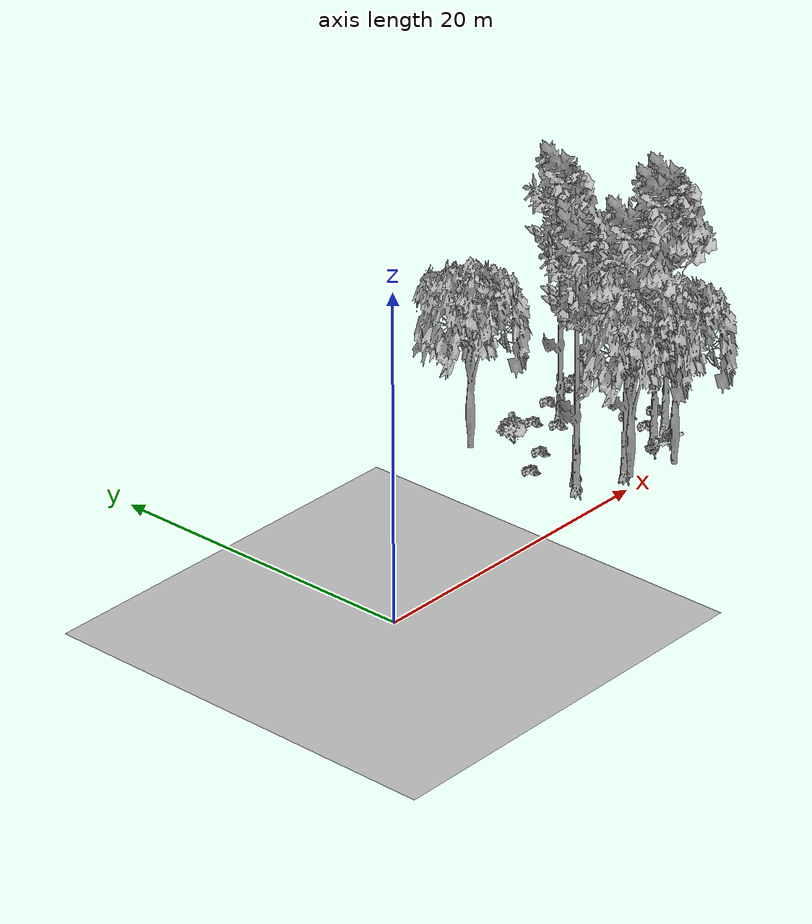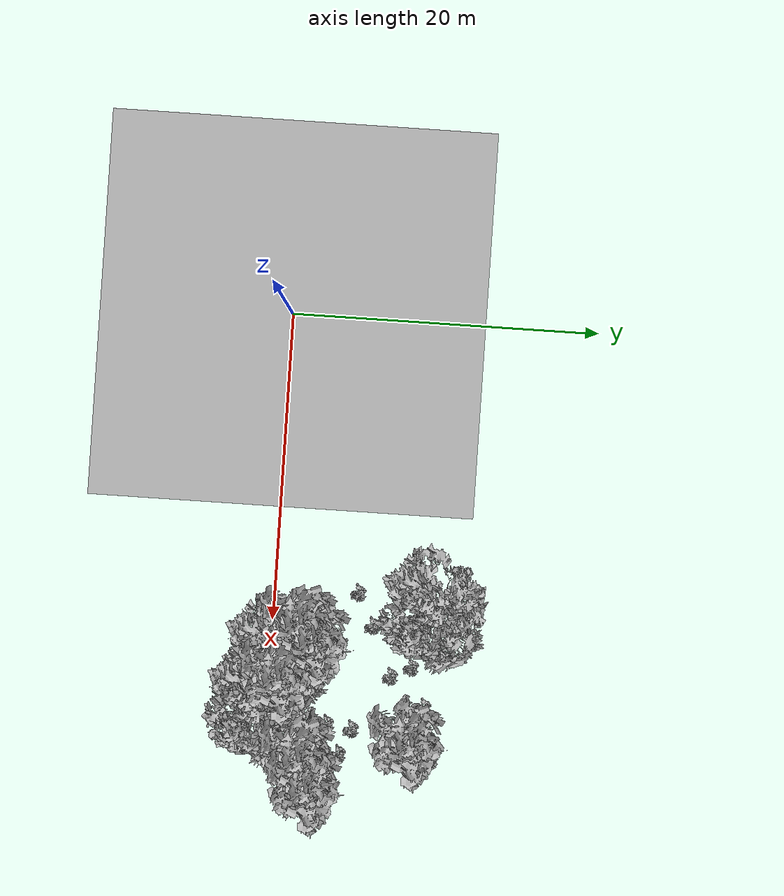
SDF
<sdf version="1.7">
 <world name="default">
  <model name="ground_plane">
   <static>1</static>
   <link name="link">
    <collision name="collision">
     <pose>-50 0 0 0 -0 0</pose>
     <geometry><plane><normal>0 0 1</normal><size>80 80</size></plane></geometry>
     <surface><contact><ode><min_depth>0.01</min_depth><max_vel>0</max_vel></ode></contact></surface>
    </collision>
    <visual name="grass">
     <cast_shadows>0</cast_shadows>
     <geometry>
      <mesh>
       <scale>0.46714285714285714 0.46714285714285714 0.1</scale>
       <uri>file://grass_plane/meshes/grass_plane.dae</uri>
      </mesh>
     </geometry>
    </visual>
   </link>
  </model>
  <model name="Tree 30">
   <static>1</static>
   <pose>21.31681991078463 0.924486611022445 0 1.57079 -0 0</pose>
   <link name="link">
    <collision name="collision">
     <geometry><mesh><scale>3.5 5 3.5</scale><uri>model://tree_2/meshes/tree_2.obj</uri></mesh></geometry>
    </collision>
    <visual name="visual">
     <geometry><mesh><scale>3.5 5 3.5</scale><uri>model://tree_2/meshes/tree_2.obj</uri></mesh></geometry>
    </visual>
   </link>
  </model>
  <model name="Tree 80">
   <static>1</static>
   <pose>26.0218025395602 2.916401134489206 0 1.57079 -0 0</pose>
   <link name="link">
    <collision name="collision">
     <geometry><mesh><scale>3.5 5 3.5</scale><uri>model://tree_9/meshes/tree_9.obj</uri></mesh></geometry>
    </collision>
    <visual name="visual">
     <geometry><mesh><scale>3.5 5 3.5</scale><uri>model://tree_9/meshes/tree_9.obj</uri></mesh></geometry>
    </visual>
   </link>
  </model>
  <model name="Tree 163">
   <static>1</static>
   <pose>24.80323540637196 9.032801996628024 0 1.57079 -0 0</pose>
   <link name="link">
    <collision name="collision">
     <geometry><mesh><scale>3.5 5 3.5</scale><uri>model://tree_9/meshes/tree_9.obj</uri></mesh></geometry>
    </collision>
    <visual name="visual">
     <geometry><mesh><scale>3.5 5 3.5</scale><uri>model://tree_9/meshes/tree_9.obj</uri></mesh></geometry>
    </visual>
   </link>
  </model>
  <model name="Tree 313">
   <static>1</static>
   <pose>27.713830222386463 3.4241609198132608 0 1.57079 -0 0</pose>
   <link name="link">
    <collision name="collision">
     <geometry><mesh><scale>3.5 5 3.5</scale><uri>model://tree_9/meshes/tree_9.obj</uri></mesh></geometry>
    </collision>
    <visual name="visual">
     <geometry><mesh><scale>3.5 5 3.5</scale><uri>model://tree_9/meshes/tree_9.obj</uri></mesh></geometry>
    </visual>
   </link>
  </model>
  <model name="Tree 391">
   <static>1</static>
   <pose>19.437620108031886 3.37367830998096 0 1.57079 -0 0</pose>
   <link name="link">
    <collision name="collision">
     <geometry><mesh><scale>3.5 5 3.5</scale><uri>model://tree_9/meshes/tree_9.obj</uri></mesh></geometry>
    </collision>
    <visual name="visual">
     <geometry><mesh><scale>3.5 5 3.5</scale><uri>model://tree_9/meshes/tree_9.obj</uri></mesh></geometry>
    </visual>
   </link>
  </model>
  <model name="Tree 402">
   <static>1</static>
   <pose>17.9817323183145 10.165172660639207 0 1.57079 -0 0</pose>
   <link name="link">
    <collision name="collision">
     <geometry><mesh><scale>3.5 5 3.5</scale><uri>model://tree_2/meshes/tree_2.obj</uri></mesh></geometry>
    </collision>
    <visual name="visual">
     <geometry><mesh><scale>3.5 5 3.5</scale><uri>model://tree_2/meshes/tree_2.obj</uri></mesh></geometry>
    </visual>
   </link>
  </model>
  <model name="Tree 419">
   <static>1</static>
   <pose>24.266944332596815 0.04779295971682984 0 1.57079 -0 0</pose>
   <link name="link">
    <collision name="collision">
     <geometry><mesh><scale>3.5 5 3.5</scale><uri>model://tree_2/meshes/tree_2.obj</uri></mesh></geometry>
    </collision>
    <visual name="visual">
     <geometry><mesh><scale>3.5 5 3.5</scale><uri>model://tree_2/meshes/tree_2.obj</uri></mesh></geometry>
    </visual>
   </link>
  </model>
  <model name="Tree 486">
   <static>1</static>
   <pose>18.49262714672502 2.53656319427796 0 1.57079 -0 0</pose>
   <link name="link">
    <collision name="collision">
     <geometry><mesh><scale>3.5 5 3.5</scale><uri>model://tree_9/meshes/tree_9.obj</uri></mesh></geometry>
    </collision>
    <visual name="visual">
     <geometry><mesh><scale>3.5 5 3.5</scale><uri>model://tree_9/meshes/tree_9.obj</uri></mesh></geometry>
    </visual>
   </link>
  </model>
  <model name="Tree 591">
   <static>1</static>
   <pose>21.6254113465494 1.5251653450817386 0 1.57079 -0 0</pose>
   <link name="link">
    <collision name="collision">
     <geometry><mesh><scale>3.5 5 3.5</scale><uri>model://tree_9/meshes/tree_9.obj</uri></mesh></geometry>
    </collision>
    <visual name="visual">
     <geometry><mesh><scale>3.5 5 3.5</scale><uri>model://tree_9/meshes/tree_9.obj</uri></mesh></geometry>
    </visual>
   </link>
  </model>
  <model name="Bush 8">
   <static>1</static>
   <pose>20.018752631666253 6.529208290333514 0 1.57079 -0 0</pose>
   <link name="link">
    <collision name="collision">
     <geometry><mesh><scale>2 2 2</scale><uri>model://bush_2/meshes/bush_2.obj</uri></mesh></geometry>
     <surface><contact><collide_without_contact>false</collide_without_contact></contact></surface>
    </collision>
    <visual name="visual">
     <geometry><mesh><scale>2 2 2</scale><uri>model://bush_2/meshes/bush_2.obj</uri></mesh></geometry>
    </visual>
   </link>
  </model>
  <model name="Bush 11">
   <static>1</static>
   <pose>26.576198787132142 3.9408122982058913 0 1.57079 -0 0</pose>
   <link name="link">
    <collision name="collision">
     <geometry><mesh><scale>2 2 2</scale><uri>model://bush_2/meshes/bush_2.obj</uri></mesh></geometry>
     <surface><contact><collide_without_contact>false</collide_without_contact></contact></surface>
    </collision>
    <visual name="visual">
     <geometry><mesh><scale>2 2 2</scale><uri>model://bush_2/meshes/bush_2.obj</uri></mesh></geometry>
    </visual>
   </link>
  </model>
  <model name="Bush 94">
   <static>1</static>
   <pose>23.232716781431648 7.896457315108584 0 1.57079 -0 0</pose>
   <link name="link">
    <collision name="collision">
     <geometry><mesh><scale>2 2 2</scale><uri>model://bush_2/meshes/bush_2.obj</uri></mesh></geometry>
     <surface><contact><collide_without_contact>false</collide_without_contact></contact></surface>
    </collision>
    <visual name="visual">
     <geometry><mesh><scale>2 2 2</scale><uri>model://bush_2/meshes/bush_2.obj</uri></mesh></geometry>
    </visual>
   </link>
  </model>
  <model name="Bush 100">
   <static>1</static>
   <pose>27.109385921939506 10.651699291584507 0 1.57079 -0 0</pose>
   <link name="link">
    <collision name="collision">
     <geometry><mesh><scale>2 2 2</scale><uri>model://bush_2/meshes/bush_2.obj</uri></mesh></geometry>
     <surface><contact><collide_without_contact>false</collide_without_contact></contact></surface>
    </collision>
    <visual name="visual">
     <geometry><mesh><scale>2 2 2</scale><uri>model://bush_2/meshes/bush_2.obj</uri></mesh></geometry>
    </visual>
   </link>
  </model>
  <model name="Bush 357">
   <static>1</static>
   <pose>26.82062984599129 5.562184241186728 0 1.57079 -0 0</pose>
   <link name="link">
    <collision name="collision">
     <geometry><mesh><scale>2 2 2</scale><uri>model://bush_2/meshes/bush_2.obj</uri></mesh></geometry>
     <surface><contact><collide_without_contact>false</collide_without_contact></contact></surface>
    </collision>
    <visual name="visual">
     <geometry><mesh><scale>2 2 2</scale><uri>model://bush_2/meshes/bush_2.obj</uri></mesh></geometry>
    </visual>
   </link>
  </model>
  <model name="Bush 364">
   <static>1</static>
   <pose>22.55788133812721 9.222736697401132 0 1.57079 -0 0</pose>
   <link name="link">
    <collision name="collision">
     <geometry><mesh><scale>2 2 2</scale><uri>model://bush_2/meshes/bush_2.obj</uri></mesh></geometry>
     <surface><contact><collide_without_contact>false</collide_without_contact></contact></surface>
    </collision>
    <visual name="visual">
     <geometry><mesh><scale>2 2 2</scale><uri>model://bush_2/meshes/bush_2.obj</uri></mesh></geometry>
    </visual>
   </link>
  </model>
  <model name="Bush 410">
   <static>1</static>
   <pose>28.494199550187616 4.837273533421836 0 1.57079 -0 0</pose>
   <link name="link">
    <collision name="collision">
     <geometry><mesh><scale>2 2 2</scale><uri>model://bush_2/meshes/bush_2.obj</uri></mesh></geometry>
     <surface><contact><collide_without_contact>false</collide_without_contact></contact></surface>
    </collision>
    <visual name="visual">
     <geometry><mesh><scale>2 2 2</scale><uri>model://bush_2/meshes/bush_2.obj</uri></mesh></geometry>
    </visual>
   </link>
  </model>
  <model name="Bush 441">
   <static>1</static>
   <pose>17.921448750845705 5.477204244977507 0 1.57079 -0 0</pose>
   <link name="link">
    <collision name="collision">
     <geometry><mesh><scale>2 2 2</scale><uri>model://bush_2/meshes/bush_2.obj</uri></mesh></geometry>
     <surface><contact><collide_without_contact>false</collide_without_contact></contact></surface>
    </collision>
    <visual name="visual">
     <geometry><mesh><scale>2 2 2</scale><uri>model://bush_2/meshes/bush_2.obj</uri></mesh></geometry>
    </visual>
   </link>
  </model>
  <model name="Bush 466">
   <static>1</static>
   <pose>23.99447866872042 1.1801566113734907 0 1.57079 -0 0</pose>
   <link name="link">
    <collision name="collision">
     <geometry><mesh><scale>2 2 2</scale><uri>model://bush_0/meshes/bush_0.obj</uri></mesh></geometry>
     <surface><contact><collide_without_contact>false</collide_without_contact></contact></surface>
    </collision>
    <visual name="visual">
     <geometry><mesh><scale>2 2 2</scale><uri>model://bush_0/meshes/bush_0.obj</uri></mesh></geometry>
    </visual>
   </link>
  </model>
  <model name="Bush 515">
   <static>1</static>
   <pose>25.093547811602157 10.196743057042134 0 1.57079 -0 0</pose>
   <link name="link">
    <collision name="collision">
     <geometry><mesh><scale>2 2 2</scale><uri>model://bush_2/meshes/bush_2.obj</uri></mesh></geometry>
     <surface><contact><collide_without_contact>false</collide_without_contact></contact></surface>
    </collision>
    <visual name="visual">
     <geometry><mesh><scale>2 2 2</scale><uri>model://bush_2/meshes/bush_2.obj</uri></mesh></geometry>
    </visual>
   </link>
  </model>
  <model name="Bush 549">
   <static>1</static>
   <pose>26.175037753232473 9.830498914106741 0 1.57079 -0 0</pose>
   <link name="link">
    <collision name="collision">
     <geometry><mesh><scale>2 2 2</scale><uri>model://bush_5/meshes/bush_5.obj</uri></mesh></geometry>
     <surface><contact><collide_without_contact>false</collide_without_contact></contact></surface>
    </collision>
    <visual name="visual">
     <geometry><mesh><scale>2 2 2</scale><uri>model://bush_5/meshes/bush_5.obj</uri></mesh></geometry>
    </visual>
   </link>
  </model>
  <model name="Bush 565">
   <static>1</static>
   <pose>28.51405577308894 10.896008159512121 0 1.57079 -0 0</pose>
   <link name="link">
    <collision name="collision">
     <geometry><mesh><scale>2 2 2</scale><uri>model://bush_2/meshes/bush_2.obj</uri></mesh></geometry>
     <surface><contact><collide_without_contact>false</collide_without_contact></contact></surface>
    </collision>
    <visual name="visual">
     <geometry><mesh><scale>2 2 2</scale><uri>model://bush_2/meshes/bush_2.obj</uri></mesh></geometry>
    </visual>
   </link>
  </model>
  <model name="Bush 572">
   <static>1</static>
   <pose>20.033365577736213 8.508651600394359 0 1.57079 -0 0</pose>
   <link name="link">
    <collision name="collision">
     <geometry><mesh><scale>2 2 2</scale><uri>model://bush_1/meshes/bush_1.obj</uri></mesh></geometry>
     <surface><contact><collide_without_contact>false</collide_without_contact></contact></surface>
    </collision>
    <visual name="visual">
     <geometry><mesh><scale>2 2 2</scale><uri>model://bush_1/meshes/bush_1.obj</uri></mesh></geometry>
    </visual>
   </link>
  </model>
  <model name="Bush 601">
   <static>1</static>
   <pose>25.39651078027329 1.196101392455759 0 1.57079 -0 0</pose>
   <link name="link">
    <collision name="collision">
     <geometry><mesh><scale>2 2 2</scale><uri>model://bush_0/meshes/bush_0.obj</uri></mesh></geometry>
     <surface><contact><collide_without_contact>false</collide_without_contact></contact></surface>
    </collision>
    <visual name="visual">
     <geometry><mesh><scale>2 2 2</scale><uri>model://bush_0/meshes/bush_0.obj</uri></mesh></geometry>
    </visual>
   </link>
  </model>
 </world>
</sdf>
